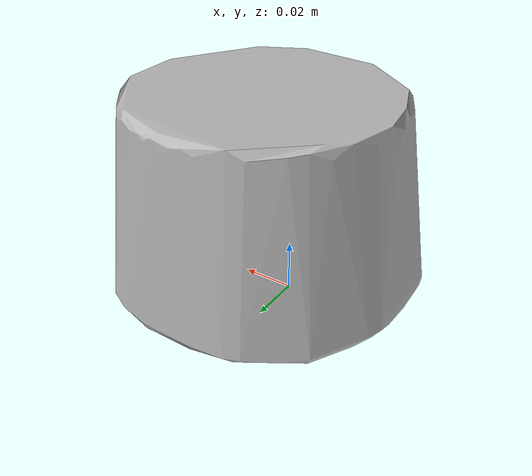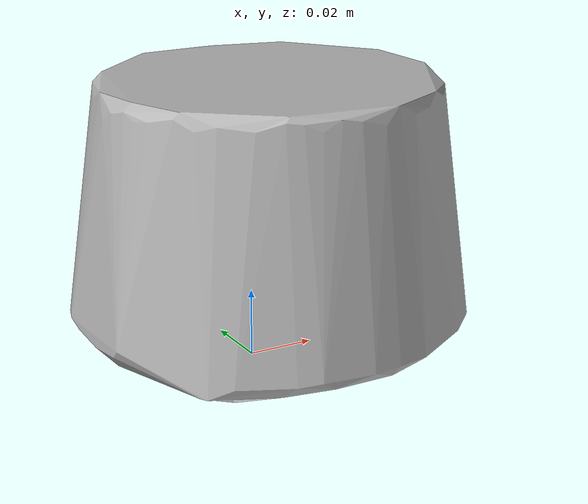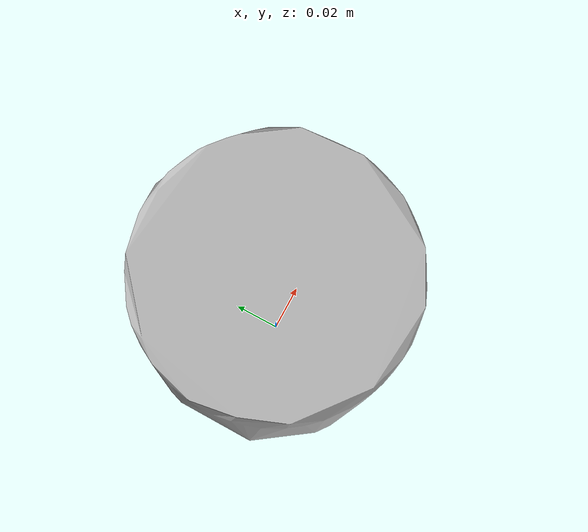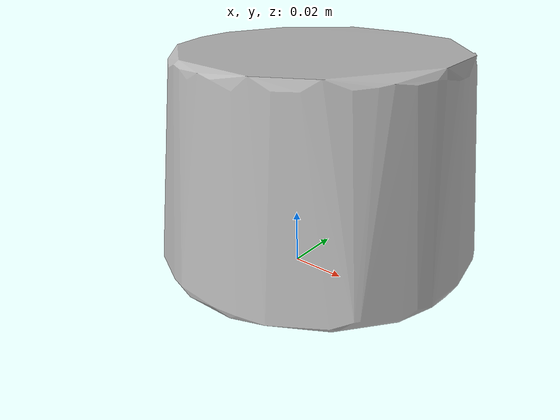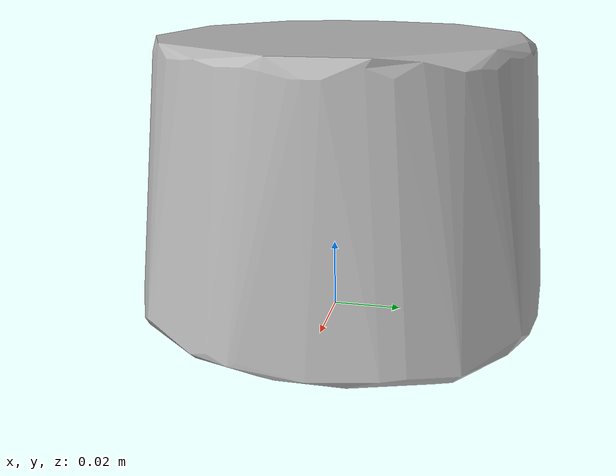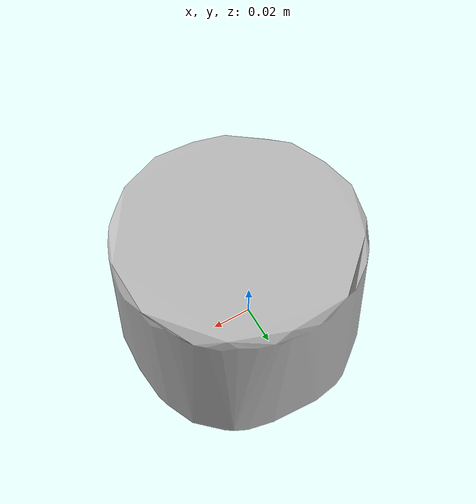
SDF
<?xml version='1.0'?>
<sdf version="1.4">
  <model name="nice_honey_roasted_almonds">
    <static>false</static>
    <link name="link">
      <inertial>
        <pose>0.007753815723434538 0.004562387340942113 0.04287448456879271 -3.1218740339304003 -1.549518638200266 -2.924280537077026</pose>
        <mass>0.06974614756636621</mass>
        <inertia>
          <ixx>0.0001013314248232839</ixx>
          <ixy>6.536486289801104e-21</ixy>
          <ixz>-4.926089959464838e-21</ixz>
          <iyy>8.452893175683724e-05</iyy>
          <iyz>-3.277313032251282e-21</iyz>
          <izz>8.382242243333615e-05</izz>
        </inertia>
      </inertial>
      <collision name="collision">
        <geometry>
          <mesh>
            <!-- Use a downsampled mesh for collisions -->
            <uri>model:///nice_honey_roasted_almonds/nice_honey_roasted_almonds_250_collision.obj</uri>
	        </mesh>
        </geometry>
        <surface>
      </surface>
      </collision>
      <visual name="visual">
        <geometry>
          <mesh>
            <uri>model:///nice_honey_roasted_almonds/optimized_tsdf_texture_mapped_mesh.obj</uri>
	        </mesh>
        </geometry>
        <material>
          <script>
            <uri>model:///nice_honey_roasted_almonds/nice_honey_roasted_almonds.material</uri>
            <name>nice_honey_roasted_almonds</name>
          </script>
        </material>
      </visual>
    </link>
  </model>
</sdf>
